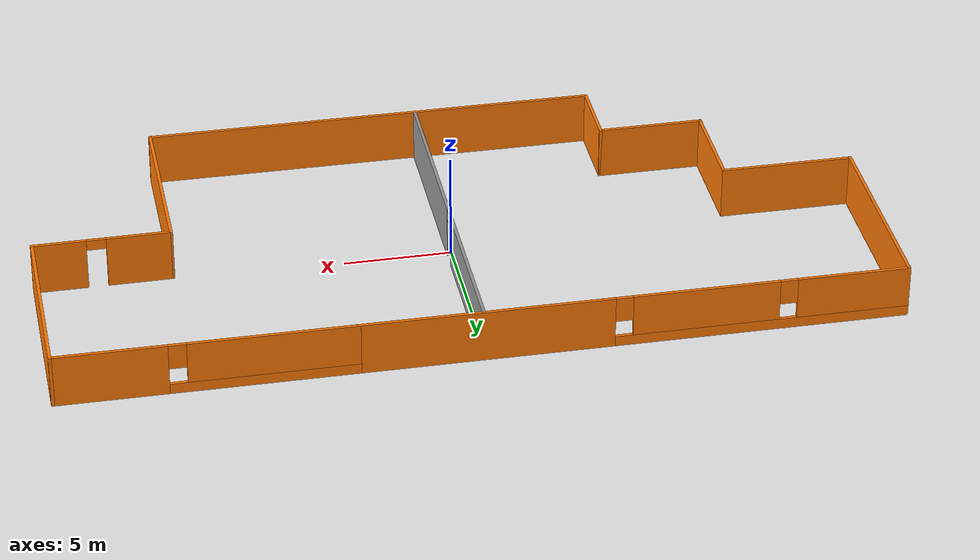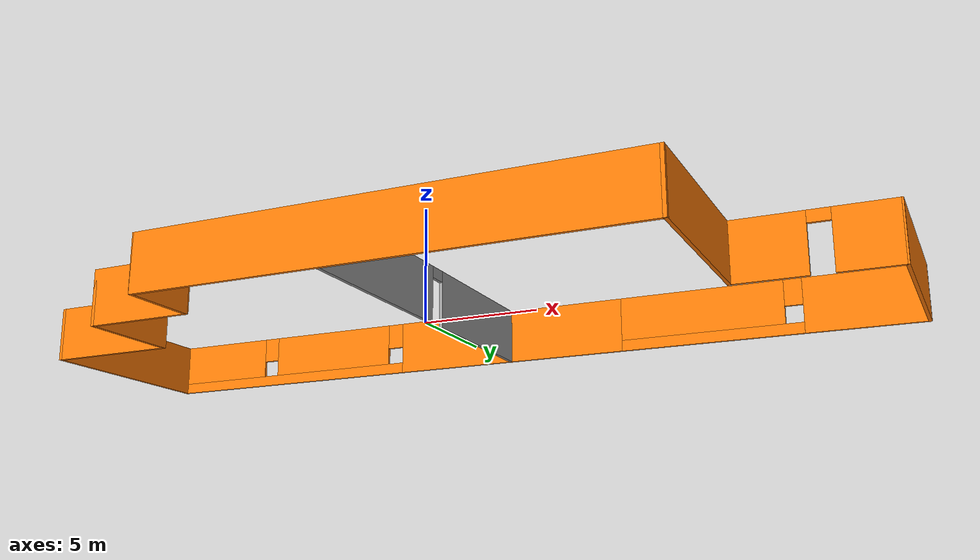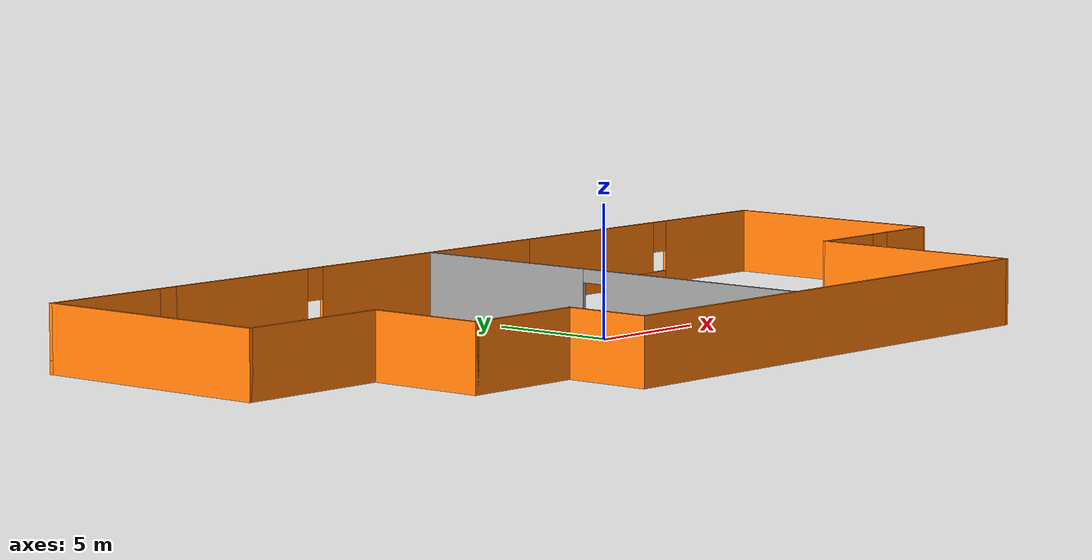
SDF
<?xml version='1.0'?>
<sdf version='1.6'>
  <model name='Building'>
    <link name='Wall_0'>
      <pose frame=''>-6.7329 8.76145 0 0 -0 3.14159</pose>
      <self_collide>0</self_collide>
      <kinematic>0</kinematic>
      <visual name='Wall_0_Visual_5'>
        <pose frame=''>6.91914 0 1.9 0 -0 0</pose>
        <geometry>
          <box>
            <size>0.8 0.15 1.2</size>
          </box>
        </geometry>
        <material>
          <script>
            <uri>file://media/materials/scripts/gazebo.material</uri>
            <name>Gazebo/Grey</name>
          </script>
          <ambient>0.996078 0.47451 0.0196078 1</ambient>
          <shader type='pixel'/>
          <diffuse>0.7 0.7 0.7 1</diffuse>
          <specular>0.01 0.01 0.01 1</specular>
          <emissive>0 0 0 1</emissive>
        </material>
        <meta>
          <layer>0</layer>
        </meta>
        <transparency>0</transparency>
        <cast_shadows>1</cast_shadows>
      </visual>
      <visual name='Wall_0_Visual_0'>
        <pose frame=''>-6.73561 0 1.25 0 -0 0</pose>
        <geometry>
          <box>
            <size>11.5288 0.15 2.5</size>
          </box>
        </geometry>
        <material>
          <script>
            <uri>file://media/materials/scripts/gazebo.material</uri>
            <name>Gazebo/Grey</name>
          </script>
          <ambient>0.996078 0.47451 0.0196078 1</ambient>
          <shader type='pixel'/>
          <diffuse>0.7 0.7 0.7 1</diffuse>
          <specular>0.01 0.01 0.01 1</specular>
          <emissive>0 0 0 1</emissive>
        </material>
        <meta>
          <layer>0</layer>
        </meta>
        <transparency>0</transparency>
        <cast_shadows>1</cast_shadows>
      </visual>
      <visual name='Wall_0_Visual_2'>
        <pose frame=''>3.17396 0 1.5 0 -0 0</pose>
        <geometry>
          <box>
            <size>6.69035 0.15 2</size>
          </box>
        </geometry>
        <material>
          <script>
            <uri>file://media/materials/scripts/gazebo.material</uri>
            <name>Gazebo/Grey</name>
          </script>
          <ambient>0.996078 0.47451 0.0196078 1</ambient>
          <shader type='pixel'/>
          <diffuse>0.7 0.7 0.7 1</diffuse>
          <specular>0.01 0.01 0.01 1</specular>
          <emissive>0 0 0 1</emissive>
        </material>
        <meta>
          <layer>0</layer>
        </meta>
        <transparency>0</transparency>
        <cast_shadows>1</cast_shadows>
      </visual>
      <visual name='Wall_0_Visual_1'>
        <pose frame=''>5.76439 0 0.25 0 -0 0</pose>
        <geometry>
          <box>
            <size>13.4712 0.15 0.5</size>
          </box>
        </geometry>
        <material>
          <script>
            <uri>file://media/materials/scripts/gazebo.material</uri>
            <name>Gazebo/Grey</name>
          </script>
          <ambient>0.996078 0.47451 0.0196078 1</ambient>
          <shader type='pixel'/>
          <diffuse>0.7 0.7 0.7 1</diffuse>
          <specular>0.01 0.01 0.01 1</specular>
          <emissive>0 0 0 1</emissive>
        </material>
        <meta>
          <layer>0</layer>
        </meta>
        <transparency>0</transparency>
        <cast_shadows>1</cast_shadows>
      </visual>
      <visual name='Wall_0_Visual_3'>
        <pose frame=''>9.90957 0 1.5 0 -0 0</pose>
        <geometry>
          <box>
            <size>5.18086 0.15 2</size>
          </box>
        </geometry>
        <material>
          <script>
            <uri>file://media/materials/scripts/gazebo.material</uri>
            <name>Gazebo/Grey</name>
          </script>
          <ambient>0.996078 0.47451 0.0196078 1</ambient>
          <shader type='pixel'/>
          <diffuse>0.7 0.7 0.7 1</diffuse>
          <specular>0.01 0.01 0.01 1</specular>
          <emissive>0 0 0 1</emissive>
        </material>
        <meta>
          <layer>0</layer>
        </meta>
        <transparency>0</transparency>
        <cast_shadows>1</cast_shadows>
      </visual>
      <visual name='Wall_0_Visual_4'>
        <pose frame=''>-0.571214 0 1.9 0 -0 0</pose>
        <geometry>
          <box>
            <size>0.8 0.15 1.2</size>
          </box>
        </geometry>
        <material>
          <script>
            <uri>file://media/materials/scripts/gazebo.material</uri>
            <name>Gazebo/Grey</name>
          </script>
          <ambient>0.996078 0.47451 0.0196078 1</ambient>
          <shader type='pixel'/>
          <diffuse>0.7 0.7 0.7 1</diffuse>
          <specular>0.01 0.01 0.01 1</specular>
          <emissive>0 0 0 1</emissive>
        </material>
        <meta>
          <layer>0</layer>
        </meta>
        <transparency>0</transparency>
        <cast_shadows>1</cast_shadows>
      </visual>
      <collision name='Wall_0_Collision_5'>
        <laser_retro>0</laser_retro>
        <max_contacts>10</max_contacts>
        <pose frame=''>6.91914 0 1.9 0 -0 0</pose>
        <geometry>
          <box>
            <size>0.8 0.15 1.2</size>
          </box>
        </geometry>
        <surface>
          <friction>
            <ode>
              <mu>1</mu>
              <mu2>1</mu2>
              <fdir1>0 0 0</fdir1>
              <slip1>0</slip1>
              <slip2>0</slip2>
            </ode>
            <torsional>
              <coefficient>1</coefficient>
              <patch_radius>0</patch_radius>
              <surface_radius>0</surface_radius>
              <use_patch_radius>1</use_patch_radius>
              <ode>
                <slip>0</slip>
              </ode>
            </torsional>
          </friction>
          <bounce>
            <restitution_coefficient>0</restitution_coefficient>
            <threshold>1e+06</threshold>
          </bounce>
          <contact>
            <collide_without_contact>0</collide_without_contact>
            <collide_without_contact_bitmask>1</collide_without_contact_bitmask>
            <collide_bitmask>1</collide_bitmask>
            <ode>
              <soft_cfm>0</soft_cfm>
              <soft_erp>0.2</soft_erp>
              <kp>1e+13</kp>
              <kd>1</kd>
              <max_vel>0.01</max_vel>
              <min_depth>0</min_depth>
            </ode>
            <bullet>
              <split_impulse>1</split_impulse>
              <split_impulse_penetration_threshold>-0.01</split_impulse_penetration_threshold>
              <soft_cfm>0</soft_cfm>
              <soft_erp>0.2</soft_erp>
              <kp>1e+13</kp>
              <kd>1</kd>
            </bullet>
          </contact>
        </surface>
      </collision>
      <collision name='Wall_0_Collision_3'>
        <laser_retro>0</laser_retro>
        <max_contacts>10</max_contacts>
        <pose frame=''>9.90957 0 1.5 0 -0 0</pose>
        <geometry>
          <box>
            <size>5.18086 0.15 2</size>
          </box>
        </geometry>
        <surface>
          <friction>
            <ode>
              <mu>1</mu>
              <mu2>1</mu2>
              <fdir1>0 0 0</fdir1>
              <slip1>0</slip1>
              <slip2>0</slip2>
            </ode>
            <torsional>
              <coefficient>1</coefficient>
              <patch_radius>0</patch_radius>
              <surface_radius>0</surface_radius>
              <use_patch_radius>1</use_patch_radius>
              <ode>
                <slip>0</slip>
              </ode>
            </torsional>
          </friction>
          <bounce>
            <restitution_coefficient>0</restitution_coefficient>
            <threshold>1e+06</threshold>
          </bounce>
          <contact>
            <collide_without_contact>0</collide_without_contact>
            <collide_without_contact_bitmask>1</collide_without_contact_bitmask>
            <collide_bitmask>1</collide_bitmask>
            <ode>
              <soft_cfm>0</soft_cfm>
              <soft_erp>0.2</soft_erp>
              <kp>1e+13</kp>
              <kd>1</kd>
              <max_vel>0.01</max_vel>
              <min_depth>0</min_depth>
            </ode>
            <bullet>
              <split_impulse>1</split_impulse>
              <split_impulse_penetration_threshold>-0.01</split_impulse_penetration_threshold>
              <soft_cfm>0</soft_cfm>
              <soft_erp>0.2</soft_erp>
              <kp>1e+13</kp>
              <kd>1</kd>
            </bullet>
          </contact>
        </surface>
      </collision>
      <collision name='Wall_0_Collision_2'>
        <laser_retro>0</laser_retro>
        <max_contacts>10</max_contacts>
        <pose frame=''>3.17396 0 1.5 0 -0 0</pose>
        <geometry>
          <box>
            <size>6.69035 0.15 2</size>
          </box>
        </geometry>
        <surface>
          <friction>
            <ode>
              <mu>1</mu>
              <mu2>1</mu2>
              <fdir1>0 0 0</fdir1>
              <slip1>0</slip1>
              <slip2>0</slip2>
            </ode>
            <torsional>
              <coefficient>1</coefficient>
              <patch_radius>0</patch_radius>
              <surface_radius>0</surface_radius>
              <use_patch_radius>1</use_patch_radius>
              <ode>
                <slip>0</slip>
              </ode>
            </torsional>
          </friction>
          <bounce>
            <restitution_coefficient>0</restitution_coefficient>
            <threshold>1e+06</threshold>
          </bounce>
          <contact>
            <collide_without_contact>0</collide_without_contact>
            <collide_without_contact_bitmask>1</collide_without_contact_bitmask>
            <collide_bitmask>1</collide_bitmask>
            <ode>
              <soft_cfm>0</soft_cfm>
              <soft_erp>0.2</soft_erp>
              <kp>1e+13</kp>
              <kd>1</kd>
              <max_vel>0.01</max_vel>
              <min_depth>0</min_depth>
            </ode>
            <bullet>
              <split_impulse>1</split_impulse>
              <split_impulse_penetration_threshold>-0.01</split_impulse_penetration_threshold>
              <soft_cfm>0</soft_cfm>
              <soft_erp>0.2</soft_erp>
              <kp>1e+13</kp>
              <kd>1</kd>
            </bullet>
          </contact>
        </surface>
      </collision>
      <collision name='Wall_0_Collision_4'>
        <laser_retro>0</laser_retro>
        <max_contacts>10</max_contacts>
        <pose frame=''>-0.571214 0 1.9 0 -0 0</pose>
        <geometry>
          <box>
            <size>0.8 0.15 1.2</size>
          </box>
        </geometry>
        <surface>
          <friction>
            <ode>
              <mu>1</mu>
              <mu2>1</mu2>
              <fdir1>0 0 0</fdir1>
              <slip1>0</slip1>
              <slip2>0</slip2>
            </ode>
            <torsional>
              <coefficient>1</coefficient>
              <patch_radius>0</patch_radius>
              <surface_radius>0</surface_radius>
              <use_patch_radius>1</use_patch_radius>
              <ode>
                <slip>0</slip>
              </ode>
            </torsional>
          </friction>
          <bounce>
            <restitution_coefficient>0</restitution_coefficient>
            <threshold>1e+06</threshold>
          </bounce>
          <contact>
            <collide_without_contact>0</collide_without_contact>
            <collide_without_contact_bitmask>1</collide_without_contact_bitmask>
            <collide_bitmask>1</collide_bitmask>
            <ode>
              <soft_cfm>0</soft_cfm>
              <soft_erp>0.2</soft_erp>
              <kp>1e+13</kp>
              <kd>1</kd>
              <max_vel>0.01</max_vel>
              <min_depth>0</min_depth>
            </ode>
            <bullet>
              <split_impulse>1</split_impulse>
              <split_impulse_penetration_threshold>-0.01</split_impulse_penetration_threshold>
              <soft_cfm>0</soft_cfm>
              <soft_erp>0.2</soft_erp>
              <kp>1e+13</kp>
              <kd>1</kd>
            </bullet>
          </contact>
        </surface>
      </collision>
      <collision name='Wall_0_Collision_0'>
        <laser_retro>0</laser_retro>
        <max_contacts>10</max_contacts>
        <pose frame=''>-6.73561 0 1.25 0 -0 0</pose>
        <geometry>
          <box>
            <size>11.5288 0.15 2.5</size>
          </box>
        </geometry>
        <surface>
          <friction>
            <ode>
              <mu>1</mu>
              <mu2>1</mu2>
              <fdir1>0 0 0</fdir1>
              <slip1>0</slip1>
              <slip2>0</slip2>
            </ode>
            <torsional>
              <coefficient>1</coefficient>
              <patch_radius>0</patch_radius>
              <surface_radius>0</surface_radius>
              <use_patch_radius>1</use_patch_radius>
              <ode>
                <slip>0</slip>
              </ode>
            </torsional>
          </friction>
          <bounce>
            <restitution_coefficient>0</restitution_coefficient>
            <threshold>1e+06</threshold>
          </bounce>
          <contact>
            <collide_without_contact>0</collide_without_contact>
            <collide_without_contact_bitmask>1</collide_without_contact_bitmask>
            <collide_bitmask>1</collide_bitmask>
            <ode>
              <soft_cfm>0</soft_cfm>
              <soft_erp>0.2</soft_erp>
              <kp>1e+13</kp>
              <kd>1</kd>
              <max_vel>0.01</max_vel>
              <min_depth>0</min_depth>
            </ode>
            <bullet>
              <split_impulse>1</split_impulse>
              <split_impulse_penetration_threshold>-0.01</split_impulse_penetration_threshold>
              <soft_cfm>0</soft_cfm>
              <soft_erp>0.2</soft_erp>
              <kp>1e+13</kp>
              <kd>1</kd>
            </bullet>
          </contact>
        </surface>
      </collision>
      <collision name='Wall_0_Collision_1'>
        <laser_retro>0</laser_retro>
        <max_contacts>10</max_contacts>
        <pose frame=''>5.76439 0 0.25 0 -0 0</pose>
        <geometry>
          <box>
            <size>13.4712 0.15 0.5</size>
          </box>
        </geometry>
        <surface>
          <friction>
            <ode>
              <mu>1</mu>
              <mu2>1</mu2>
              <fdir1>0 0 0</fdir1>
              <slip1>0</slip1>
              <slip2>0</slip2>
            </ode>
            <torsional>
              <coefficient>1</coefficient>
              <patch_radius>0</patch_radius>
              <surface_radius>0</surface_radius>
              <use_patch_radius>1</use_patch_radius>
              <ode>
                <slip>0</slip>
              </ode>
            </torsional>
          </friction>
          <bounce>
            <restitution_coefficient>0</restitution_coefficient>
            <threshold>1e+06</threshold>
          </bounce>
          <contact>
            <collide_without_contact>0</collide_without_contact>
            <collide_without_contact_bitmask>1</collide_without_contact_bitmask>
            <collide_bitmask>1</collide_bitmask>
            <ode>
              <soft_cfm>0</soft_cfm>
              <soft_erp>0.2</soft_erp>
              <kp>1e+13</kp>
              <kd>1</kd>
              <max_vel>0.01</max_vel>
              <min_depth>0</min_depth>
            </ode>
            <bullet>
              <split_impulse>1</split_impulse>
              <split_impulse_penetration_threshold>-0.01</split_impulse_penetration_threshold>
              <soft_cfm>0</soft_cfm>
              <soft_erp>0.2</soft_erp>
              <kp>1e+13</kp>
              <kd>1</kd>
            </bullet>
          </contact>
        </surface>
      </collision>
    </link>
    <link name='Wall_1'>
      <pose frame=''>-19.1579 3.96145 0 0 0 -1.5708</pose>
      <self_collide>0</self_collide>
      <kinematic>0</kinematic>
      <visual name='Wall_1_Visual'>
        <pose frame=''>0 0 1.25 0 -0 0</pose>
        <geometry>
          <box>
            <size>9.75 0.15 2.5</size>
          </box>
        </geometry>
        <material>
          <script>
            <uri>file://media/materials/scripts/gazebo.material</uri>
            <name>Gazebo/Grey</name>
          </script>
          <ambient>0.996078 0.47451 0.0196078 1</ambient>
          <shader type='pixel'/>
          <diffuse>0.7 0.7 0.7 1</diffuse>
          <specular>0.01 0.01 0.01 1</specular>
          <emissive>0 0 0 1</emissive>
        </material>
        <meta>
          <layer>0</layer>
        </meta>
        <transparency>0</transparency>
        <cast_shadows>1</cast_shadows>
      </visual>
      <collision name='Wall_1_Collision'>
        <laser_retro>0</laser_retro>
        <max_contacts>10</max_contacts>
        <pose frame=''>0 0 1.25 0 -0 0</pose>
        <geometry>
          <box>
            <size>9.75 0.15 2.5</size>
          </box>
        </geometry>
        <surface>
          <friction>
            <ode>
              <mu>1</mu>
              <mu2>1</mu2>
              <fdir1>0 0 0</fdir1>
              <slip1>0</slip1>
              <slip2>0</slip2>
            </ode>
            <torsional>
              <coefficient>1</coefficient>
              <patch_radius>0</patch_radius>
              <surface_radius>0</surface_radius>
              <use_patch_radius>1</use_patch_radius>
              <ode>
                <slip>0</slip>
              </ode>
            </torsional>
          </friction>
          <bounce>
            <restitution_coefficient>0</restitution_coefficient>
            <threshold>1e+06</threshold>
          </bounce>
          <contact>
            <collide_without_contact>0</collide_without_contact>
            <collide_without_contact_bitmask>1</collide_without_contact_bitmask>
            <collide_bitmask>1</collide_bitmask>
            <ode>
              <soft_cfm>0</soft_cfm>
              <soft_erp>0.2</soft_erp>
              <kp>1e+13</kp>
              <kd>1</kd>
              <max_vel>0.01</max_vel>
              <min_depth>0</min_depth>
            </ode>
            <bullet>
              <split_impulse>1</split_impulse>
              <split_impulse_penetration_threshold>-0.01</split_impulse_penetration_threshold>
              <soft_cfm>0</soft_cfm>
              <soft_erp>0.2</soft_erp>
              <kp>1e+13</kp>
              <kd>1</kd>
            </bullet>
          </contact>
        </surface>
      </collision>
    </link>
    <link name='Wall_10'>
      <pose frame=''>12.4248 8.76151 0 0 0 -3.14159</pose>
      <self_collide>0</self_collide>
      <kinematic>0</kinematic>
      <visual name='Wall_10_Visual_1'>
        <pose frame=''>2.58746 0 0.25 0 -0 0</pose>
        <geometry>
          <box>
            <size>8.4404 0.15 0.5</size>
          </box>
        </geometry>
        <material>
          <script>
            <uri>file://media/materials/scripts/gazebo.material</uri>
            <name>Gazebo/Grey</name>
          </script>
          <ambient>0.996078 0.47451 0.0196078 1</ambient>
          <shader type='pixel'/>
          <diffuse>0.7 0.7 0.7 1</diffuse>
          <specular>0.01 0.01 0.01 1</specular>
          <emissive>0 0 0 1</emissive>
        </material>
        <meta>
          <layer>0</layer>
        </meta>
        <transparency>0</transparency>
        <cast_shadows>1</cast_shadows>
      </visual>
      <visual name='Wall_10_Visual_2'>
        <pose frame=''>2.98746 0 1.5 0 -0 0</pose>
        <geometry>
          <box>
            <size>7.6404 0.15 2</size>
          </box>
        </geometry>
        <material>
          <script>
            <uri>file://media/materials/scripts/gazebo.material</uri>
            <name>Gazebo/Grey</name>
          </script>
          <ambient>0.996078 0.47451 0.0196078 1</ambient>
          <shader type='pixel'/>
          <diffuse>0.7 0.7 0.7 1</diffuse>
          <specular>0.01 0.01 0.01 1</specular>
          <emissive>0 0 0 1</emissive>
        </material>
        <meta>
          <layer>0</layer>
        </meta>
        <transparency>0</transparency>
        <cast_shadows>1</cast_shadows>
      </visual>
      <visual name='Wall_10_Visual_0'>
        <pose frame=''>-4.2202 0 1.25 0 -0 0</pose>
        <geometry>
          <box>
            <size>5.17492 0.15 2.5</size>
          </box>
        </geometry>
        <material>
          <script>
            <uri>file://media/materials/scripts/gazebo.material</uri>
            <name>Gazebo/Grey</name>
          </script>
          <ambient>0.996078 0.47451 0.0196078 1</ambient>
          <shader type='pixel'/>
          <diffuse>0.7 0.7 0.7 1</diffuse>
          <specular>0.01 0.01 0.01 1</specular>
          <emissive>0 0 0 1</emissive>
        </material>
        <meta>
          <layer>0</layer>
        </meta>
        <transparency>0</transparency>
        <cast_shadows>1</cast_shadows>
      </visual>
      <visual name='Wall_10_Visual_3'>
        <pose frame=''>-1.23274 0 1.9 0 -0 0</pose>
        <geometry>
          <box>
            <size>0.8 0.15 1.2</size>
          </box>
        </geometry>
        <material>
          <script>
            <uri>file://media/materials/scripts/gazebo.material</uri>
            <name>Gazebo/Grey</name>
          </script>
          <ambient>0.996078 0.47451 0.0196078 1</ambient>
          <shader type='pixel'/>
          <diffuse>0.7 0.7 0.7 1</diffuse>
          <specular>0.01 0.01 0.01 1</specular>
          <emissive>0 0 0 1</emissive>
        </material>
        <meta>
          <layer>0</layer>
        </meta>
        <transparency>0</transparency>
        <cast_shadows>1</cast_shadows>
      </visual>
      <collision name='Wall_10_Collision_3'>
        <laser_retro>0</laser_retro>
        <max_contacts>10</max_contacts>
        <pose frame=''>-1.23274 0 1.9 0 -0 0</pose>
        <geometry>
          <box>
            <size>0.8 0.15 1.2</size>
          </box>
        </geometry>
        <surface>
          <friction>
            <ode>
              <mu>1</mu>
              <mu2>1</mu2>
              <fdir1>0 0 0</fdir1>
              <slip1>0</slip1>
              <slip2>0</slip2>
            </ode>
            <torsional>
              <coefficient>1</coefficient>
              <patch_radius>0</patch_radius>
              <surface_radius>0</surface_radius>
              <use_patch_radius>1</use_patch_radius>
              <ode>
                <slip>0</slip>
              </ode>
            </torsional>
          </friction>
          <bounce>
            <restitution_coefficient>0</restitution_coefficient>
            <threshold>1e+06</threshold>
          </bounce>
          <contact>
            <collide_without_contact>0</collide_without_contact>
            <collide_without_contact_bitmask>1</collide_without_contact_bitmask>
            <collide_bitmask>1</collide_bitmask>
            <ode>
              <soft_cfm>0</soft_cfm>
              <soft_erp>0.2</soft_erp>
              <kp>1e+13</kp>
              <kd>1</kd>
              <max_vel>0.01</max_vel>
              <min_depth>0</min_depth>
            </ode>
            <bullet>
              <split_impulse>1</split_impulse>
              <split_impulse_penetration_threshold>-0.01</split_impulse_penetration_threshold>
              <soft_cfm>0</soft_cfm>
              <soft_erp>0.2</soft_erp>
              <kp>1e+13</kp>
              <kd>1</kd>
            </bullet>
          </contact>
        </surface>
      </collision>
      <collision name='Wall_10_Collision_1'>
        <laser_retro>0</laser_retro>
        <max_contacts>10</max_contacts>
        <pose frame=''>2.58746 0 0.25 0 -0 0</pose>
        <geometry>
          <box>
            <size>8.4404 0.15 0.5</size>
          </box>
        </geometry>
        <surface>
          <friction>
            <ode>
              <mu>1</mu>
              <mu2>1</mu2>
              <fdir1>0 0 0</fdir1>
              <slip1>0</slip1>
              <slip2>0</slip2>
            </ode>
            <torsional>
              <coefficient>1</coefficient>
              <patch_radius>0</patch_radius>
              <surface_radius>0</surface_radius>
              <use_patch_radius>1</use_patch_radius>
              <ode>
                <slip>0</slip>
              </ode>
            </torsional>
          </friction>
          <bounce>
            <restitution_coefficient>0</restitution_coefficient>
            <threshold>1e+06</threshold>
          </bounce>
          <contact>
            <collide_without_contact>0</collide_without_contact>
            <collide_without_contact_bitmask>1</collide_without_contact_bitmask>
            <collide_bitmask>1</collide_bitmask>
            <ode>
              <soft_cfm>0</soft_cfm>
              <soft_erp>0.2</soft_erp>
              <kp>1e+13</kp>
              <kd>1</kd>
              <max_vel>0.01</max_vel>
              <min_depth>0</min_depth>
            </ode>
            <bullet>
              <split_impulse>1</split_impulse>
              <split_impulse_penetration_threshold>-0.01</split_impulse_penetration_threshold>
              <soft_cfm>0</soft_cfm>
              <soft_erp>0.2</soft_erp>
              <kp>1e+13</kp>
              <kd>1</kd>
            </bullet>
          </contact>
        </surface>
      </collision>
      <collision name='Wall_10_Collision_2'>
        <laser_retro>0</laser_retro>
        <max_contacts>10</max_contacts>
        <pose frame=''>2.98746 0 1.5 0 -0 0</pose>
        <geometry>
          <box>
            <size>7.6404 0.15 2</size>
          </box>
        </geometry>
        <surface>
          <friction>
            <ode>
              <mu>1</mu>
              <mu2>1</mu2>
              <fdir1>0 0 0</fdir1>
              <slip1>0</slip1>
              <slip2>0</slip2>
            </ode>
            <torsional>
              <coefficient>1</coefficient>
              <patch_radius>0</patch_radius>
              <surface_radius>0</surface_radius>
              <use_patch_radius>1</use_patch_radius>
              <ode>
                <slip>0</slip>
              </ode>
            </torsional>
          </friction>
          <bounce>
            <restitution_coefficient>0</restitution_coefficient>
            <threshold>1e+06</threshold>
          </bounce>
          <contact>
            <collide_without_contact>0</collide_without_contact>
            <collide_without_contact_bitmask>1</collide_without_contact_bitmask>
            <collide_bitmask>1</collide_bitmask>
            <ode>
              <soft_cfm>0</soft_cfm>
              <soft_erp>0.2</soft_erp>
              <kp>1e+13</kp>
              <kd>1</kd>
              <max_vel>0.01</max_vel>
              <min_depth>0</min_depth>
            </ode>
            <bullet>
              <split_impulse>1</split_impulse>
              <split_impulse_penetration_threshold>-0.01</split_impulse_penetration_threshold>
              <soft_cfm>0</soft_cfm>
              <soft_erp>0.2</soft_erp>
              <kp>1e+13</kp>
              <kd>1</kd>
            </bullet>
          </contact>
        </surface>
      </collision>
      <collision name='Wall_10_Collision_0'>
        <laser_retro>0</laser_retro>
        <max_contacts>10</max_contacts>
        <pose frame=''>-4.2202 0 1.25 0 -0 0</pose>
        <geometry>
          <box>
            <size>5.17492 0.15 2.5</size>
          </box>
        </geometry>
        <surface>
          <friction>
            <ode>
              <mu>1</mu>
              <mu2>1</mu2>
              <fdir1>0 0 0</fdir1>
              <slip1>0</slip1>
              <slip2>0</slip2>
            </ode>
            <torsional>
              <coefficient>1</coefficient>
              <patch_radius>0</patch_radius>
              <surface_radius>0</surface_radius>
              <use_patch_radius>1</use_patch_radius>
              <ode>
                <slip>0</slip>
              </ode>
            </torsional>
          </friction>
          <bounce>
            <restitution_coefficient>0</restitution_coefficient>
            <threshold>1e+06</threshold>
          </bounce>
          <contact>
            <collide_without_contact>0</collide_without_contact>
            <collide_without_contact_bitmask>1</collide_without_contact_bitmask>
            <collide_bitmask>1</collide_bitmask>
            <ode>
              <soft_cfm>0</soft_cfm>
              <soft_erp>0.2</soft_erp>
              <kp>1e+13</kp>
              <kd>1</kd>
              <max_vel>0.01</max_vel>
              <min_depth>0</min_depth>
            </ode>
            <bullet>
              <split_impulse>1</split_impulse>
              <split_impulse_penetration_threshold>-0.01</split_impulse_penetration_threshold>
              <soft_cfm>0</soft_cfm>
              <soft_erp>0.2</soft_erp>
              <kp>1e+13</kp>
              <kd>1</kd>
            </bullet>
          </contact>
        </surface>
      </collision>
    </link>
    <link name='Wall_14'>
      <pose frame=''>0.157426 0.059562 0 0 0 -1.5708</pose>
      <self_collide>0</self_collide>
      <kinematic>0</kinematic>
      <visual name='Wall_14_Visual_2'>
        <pose frame=''>-0.57937 0 2.25 0 -0 0</pose>
        <geometry>
          <box>
            <size>0.9 0.15 0.5</size>
          </box>
        </geometry>
        <material>
          <script>
            <uri>file://media/materials/scripts/gazebo.material</uri>
            <name>Gazebo/Grey</name>
          </script>
          <ambient>1 1 1 1</ambient>
          <shader type='pixel'/>
          <diffuse>0.7 0.7 0.7 1</diffuse>
          <specular>0.01 0.01 0.01 1</specular>
          <emissive>0 0 0 1</emissive>
        </material>
        <meta>
          <layer>0</layer>
        </meta>
        <transparency>0</transparency>
        <cast_shadows>1</cast_shadows>
      </visual>
      <visual name='Wall_14_Visual_0'>
        <pose frame=''>-4.88969 0 1.25 0 -0 0</pose>
        <geometry>
          <box>
            <size>7.72063 0.15 2.5</size>
          </box>
        </geometry>
        <material>
          <script>
            <uri>file://media/materials/scripts/gazebo.material</uri>
            <name>Gazebo/Grey</name>
          </script>
          <ambient>1 1 1 1</ambient>
          <shader type='pixel'/>
          <diffuse>0.7 0.7 0.7 1</diffuse>
          <specular>0.01 0.01 0.01 1</specular>
          <emissive>0 0 0 1</emissive>
        </material>
        <meta>
          <layer>0</layer>
        </meta>
        <transparency>0</transparency>
        <cast_shadows>1</cast_shadows>
      </visual>
      <visual name='Wall_14_Visual_1'>
        <pose frame=''>4.31032 0 1.25 0 -0 0</pose>
        <geometry>
          <box>
            <size>8.87937 0.15 2.5</size>
          </box>
        </geometry>
        <material>
          <script>
            <uri>file://media/materials/scripts/gazebo.material</uri>
            <name>Gazebo/Grey</name>
          </script>
          <ambient>1 1 1 1</ambient>
          <shader type='pixel'/>
          <diffuse>0.7 0.7 0.7 1</diffuse>
          <specular>0.01 0.01 0.01 1</specular>
          <emissive>0 0 0 1</emissive>
        </material>
        <meta>
          <layer>0</layer>
        </meta>
        <transparency>0</transparency>
        <cast_shadows>1</cast_shadows>
      </visual>
      <collision name='Wall_14_Collision_2'>
        <laser_retro>0</laser_retro>
        <max_contacts>10</max_contacts>
        <pose frame=''>-0.57937 0 2.25 0 -0 0</pose>
        <geometry>
          <box>
            <size>0.9 0.15 0.5</size>
          </box>
        </geometry>
        <surface>
          <friction>
            <ode>
              <mu>1</mu>
              <mu2>1</mu2>
              <fdir1>0 0 0</fdir1>
              <slip1>0</slip1>
              <slip2>0</slip2>
            </ode>
            <torsional>
              <coefficient>1</coefficient>
              <patch_radius>0</patch_radius>
              <surface_radius>0</surface_radius>
              <use_patch_radius>1</use_patch_radius>
              <ode>
                <slip>0</slip>
              </ode>
            </torsional>
          </friction>
          <bounce>
            <restitution_coefficient>0</restitution_coefficient>
            <threshold>1e+06</threshold>
          </bounce>
          <contact>
            <collide_without_contact>0</collide_without_contact>
            <collide_without_contact_bitmask>1</collide_without_contact_bitmask>
            <collide_bitmask>1</collide_bitmask>
            <ode>
              <soft_cfm>0</soft_cfm>
              <soft_erp>0.2</soft_erp>
              <kp>1e+13</kp>
              <kd>1</kd>
              <max_vel>0.01</max_vel>
              <min_depth>0</min_depth>
            </ode>
            <bullet>
              <split_impulse>1</split_impulse>
              <split_impulse_penetration_threshold>-0.01</split_impulse_penetration_threshold>
              <soft_cfm>0</soft_cfm>
              <soft_erp>0.2</soft_erp>
              <kp>1e+13</kp>
              <kd>1</kd>
            </bullet>
          </contact>
        </surface>
      </collision>
      <collision name='Wall_14_Collision_0'>
        <laser_retro>0</laser_retro>
        <max_contacts>10</max_contacts>
        <pose frame=''>-4.88969 0 1.25 0 -0 0</pose>
        <geometry>
          <box>
            <size>7.72063 0.15 2.5</size>
          </box>
        </geometry>
        <surface>
          <friction>
            <ode>
              <mu>1</mu>
              <mu2>1</mu2>
              <fdir1>0 0 0</fdir1>
              <slip1>0</slip1>
              <slip2>0</slip2>
            </ode>
            <torsional>
              <coefficient>1</coefficient>
              <patch_radius>0</patch_radius>
              <surface_radius>0</surface_radius>
              <use_patch_radius>1</use_patch_radius>
              <ode>
                <slip>0</slip>
              </ode>
            </torsional>
          </friction>
          <bounce>
            <restitution_coefficient>0</restitution_coefficient>
            <threshold>1e+06</threshold>
          </bounce>
          <contact>
            <collide_without_contact>0</collide_without_contact>
            <collide_without_contact_bitmask>1</collide_without_contact_bitmask>
            <collide_bitmask>1</collide_bitmask>
            <ode>
              <soft_cfm>0</soft_cfm>
              <soft_erp>0.2</soft_erp>
              <kp>1e+13</kp>
              <kd>1</kd>
              <max_vel>0.01</max_vel>
              <min_depth>0</min_depth>
            </ode>
            <bullet>
              <split_impulse>1</split_impulse>
              <split_impulse_penetration_threshold>-0.01</split_impulse_penetration_threshold>
              <soft_cfm>0</soft_cfm>
              <soft_erp>0.2</soft_erp>
              <kp>1e+13</kp>
              <kd>1</kd>
            </bullet>
          </contact>
        </surface>
      </collision>
      <collision name='Wall_14_Collision_1'>
        <laser_retro>0</laser_retro>
        <max_contacts>10</max_contacts>
        <pose frame=''>4.31032 0 1.25 0 -0 0</pose>
        <geometry>
          <box>
            <size>8.87937 0.15 2.5</size>
          </box>
        </geometry>
        <surface>
          <friction>
            <ode>
              <mu>1</mu>
              <mu2>1</mu2>
              <fdir1>0 0 0</fdir1>
              <slip1>0</slip1>
              <slip2>0</slip2>
            </ode>
            <torsional>
              <coefficient>1</coefficient>
              <patch_radius>0</patch_radius>
              <surface_radius>0</surface_radius>
              <use_patch_radius>1</use_patch_radius>
              <ode>
                <slip>0</slip>
              </ode>
            </torsional>
          </friction>
          <bounce>
            <restitution_coefficient>0</restitution_coefficient>
            <threshold>1e+06</threshold>
          </bounce>
          <contact>
            <collide_without_contact>0</collide_without_contact>
            <collide_without_contact_bitmask>1</collide_without_contact_bitmask>
            <collide_bitmask>1</collide_bitmask>
            <ode>
              <soft_cfm>0</soft_cfm>
              <soft_erp>0.2</soft_erp>
              <kp>1e+13</kp>
              <kd>1</kd>
              <max_vel>0.01</max_vel>
              <min_depth>0</min_depth>
            </ode>
            <bullet>
              <split_impulse>1</split_impulse>
              <split_impulse_penetration_threshold>-0.01</split_impulse_penetration_threshold>
              <soft_cfm>0</soft_cfm>
              <soft_erp>0.2</soft_erp>
              <kp>1e+13</kp>
              <kd>1</kd>
            </bullet>
          </contact>
        </surface>
      </collision>
    </link>
    <link name='Wall_2'>
      <pose frame=''>-16.1079 -0.838546 0 0 -0 0</pose>
      <self_collide>0</self_collide>
      <kinematic>0</kinematic>
      <visual name='Wall_2_Visual'>
        <pose frame=''>0 0 1.25 0 -0 0</pose>
        <geometry>
          <box>
            <size>6.25 0.15 2.5</size>
          </box>
        </geometry>
        <material>
          <script>
            <uri>file://media/materials/scripts/gazebo.material</uri>
            <name>Gazebo/Grey</name>
          </script>
          <ambient>0.996078 0.47451 0.0196078 1</ambient>
          <shader type='pixel'/>
          <diffuse>0.7 0.7 0.7 1</diffuse>
          <specular>0.01 0.01 0.01 1</specular>
          <emissive>0 0 0 1</emissive>
        </material>
        <meta>
          <layer>0</layer>
        </meta>
        <transparency>0</transparency>
        <cast_shadows>1</cast_shadows>
      </visual>
      <collision name='Wall_2_Collision'>
        <laser_retro>0</laser_retro>
        <max_contacts>10</max_contacts>
        <pose frame=''>0 0 1.25 0 -0 0</pose>
        <geometry>
          <box>
            <size>6.25 0.15 2.5</size>
          </box>
        </geometry>
        <surface>
          <friction>
            <ode>
              <mu>1</mu>
              <mu2>1</mu2>
              <fdir1>0 0 0</fdir1>
              <slip1>0</slip1>
              <slip2>0</slip2>
            </ode>
            <torsional>
              <coefficient>1</coefficient>
              <patch_radius>0</patch_radius>
              <surface_radius>0</surface_radius>
              <use_patch_radius>1</use_patch_radius>
              <ode>
                <slip>0</slip>
              </ode>
            </torsional>
          </friction>
          <bounce>
            <restitution_coefficient>0</restitution_coefficient>
            <threshold>1e+06</threshold>
          </bounce>
          <contact>
            <collide_without_contact>0</collide_without_contact>
            <collide_without_contact_bitmask>1</collide_without_contact_bitmask>
            <collide_bitmask>1</collide_bitmask>
            <ode>
              <soft_cfm>0</soft_cfm>
              <soft_erp>0.2</soft_erp>
              <kp>1e+13</kp>
              <kd>1</kd>
              <max_vel>0.01</max_vel>
              <min_depth>0</min_depth>
            </ode>
            <bullet>
              <split_impulse>1</split_impulse>
              <split_impulse_penetration_threshold>-0.01</split_impulse_penetration_threshold>
              <soft_cfm>0</soft_cfm>
              <soft_erp>0.2</soft_erp>
              <kp>1e+13</kp>
              <kd>1</kd>
            </bullet>
          </contact>
        </surface>
      </collision>
    </link>
    <link name='Wall_3'>
      <pose frame=''>-13.0579 -3.13855 0 0 0 -1.5708</pose>
      <self_collide>0</self_collide>
      <kinematic>0</kinematic>
      <visual name='Wall_3_Visual'>
        <pose frame=''>0 0 1.25 0 -0 0</pose>
        <geometry>
          <box>
            <size>4.75 0.15 2.5</size>
          </box>
        </geometry>
        <material>
          <script>
            <uri>file://media/materials/scripts/gazebo.material</uri>
            <name>Gazebo/Grey</name>
          </script>
          <ambient>0.996078 0.47451 0.0196078 1</ambient>
          <shader type='pixel'/>
          <diffuse>0.7 0.7 0.7 1</diffuse>
          <specular>0.01 0.01 0.01 1</specular>
          <emissive>0 0 0 1</emissive>
        </material>
        <meta>
          <layer>0</layer>
        </meta>
        <transparency>0</transparency>
        <cast_shadows>1</cast_shadows>
      </visual>
      <collision name='Wall_3_Collision'>
        <laser_retro>0</laser_retro>
        <max_contacts>10</max_contacts>
        <pose frame=''>0 0 1.25 0 -0 0</pose>
        <geometry>
          <box>
            <size>4.75 0.15 2.5</size>
          </box>
        </geometry>
        <surface>
          <friction>
            <ode>
              <mu>1</mu>
              <mu2>1</mu2>
              <fdir1>0 0 0</fdir1>
              <slip1>0</slip1>
              <slip2>0</slip2>
            </ode>
            <torsional>
              <coefficient>1</coefficient>
              <patch_radius>0</patch_radius>
              <surface_radius>0</surface_radius>
              <use_patch_radius>1</use_patch_radius>
              <ode>
                <slip>0</slip>
              </ode>
            </torsional>
          </friction>
          <bounce>
            <restitution_coefficient>0</restitution_coefficient>
            <threshold>1e+06</threshold>
          </bounce>
          <contact>
            <collide_without_contact>0</collide_without_contact>
            <collide_without_contact_bitmask>1</collide_without_contact_bitmask>
            <collide_bitmask>1</collide_bitmask>
            <ode>
              <soft_cfm>0</soft_cfm>
              <soft_erp>0.2</soft_erp>
              <kp>1e+13</kp>
              <kd>1</kd>
              <max_vel>0.01</max_vel>
              <min_depth>0</min_depth>
            </ode>
            <bullet>
              <split_impulse>1</split_impulse>
              <split_impulse_penetration_threshold>-0.01</split_impulse_penetration_threshold>
              <soft_cfm>0</soft_cfm>
              <soft_erp>0.2</soft_erp>
              <kp>1e+13</kp>
              <kd>1</kd>
            </bullet>
          </contact>
        </surface>
      </collision>
    </link>
    <link name='Wall_4'>
      <pose frame=''>-10.6329 -5.43855 0 0 -0 0</pose>
      <self_collide>0</self_collide>
      <kinematic>0</kinematic>
      <visual name='Wall_4_Visual'>
        <pose frame=''>0 0 1.25 0 -0 0</pose>
        <geometry>
          <box>
            <size>5 0.15 2.5</size>
          </box>
        </geometry>
        <material>
          <script>
            <uri>file://media/materials/scripts/gazebo.material</uri>
            <name>Gazebo/Grey</name>
          </script>
          <ambient>0.996078 0.47451 0.0196078 1</ambient>
          <shader type='pixel'/>
          <diffuse>0.7 0.7 0.7 1</diffuse>
          <specular>0.01 0.01 0.01 1</specular>
          <emissive>0 0 0 1</emissive>
        </material>
        <meta>
          <layer>0</layer>
        </meta>
        <transparency>0</transparency>
        <cast_shadows>1</cast_shadows>
      </visual>
      <collision name='Wall_4_Collision'>
        <laser_retro>0</laser_retro>
        <max_contacts>10</max_contacts>
        <pose frame=''>0 0 1.25 0 -0 0</pose>
        <geometry>
          <box>
            <size>5 0.15 2.5</size>
          </box>
        </geometry>
        <surface>
          <friction>
            <ode>
              <mu>1</mu>
              <mu2>1</mu2>
              <fdir1>0 0 0</fdir1>
              <slip1>0</slip1>
              <slip2>0</slip2>
            </ode>
            <torsional>
              <coefficient>1</coefficient>
              <patch_radius>0</patch_radius>
              <surface_radius>0</surface_radius>
              <use_patch_radius>1</use_patch_radius>
              <ode>
                <slip>0</slip>
              </ode>
            </torsional>
          </friction>
          <bounce>
            <restitution_coefficient>0</restitution_coefficient>
            <threshold>1e+06</threshold>
          </bounce>
          <contact>
            <collide_without_contact>0</collide_without_contact>
            <collide_without_contact_bitmask>1</collide_without_contact_bitmask>
            <collide_bitmask>1</collide_bitmask>
            <ode>
              <soft_cfm>0</soft_cfm>
              <soft_erp>0.2</soft_erp>
              <kp>1e+13</kp>
              <kd>1</kd>
              <max_vel>0.01</max_vel>
              <min_depth>0</min_depth>
            </ode>
            <bullet>
              <split_impulse>1</split_impulse>
              <split_impulse_penetration_threshold>-0.01</split_impulse_penetration_threshold>
              <soft_cfm>0</soft_cfm>
              <soft_erp>0.2</soft_erp>
              <kp>1e+13</kp>
              <kd>1</kd>
            </bullet>
          </contact>
        </surface>
      </collision>
    </link>
    <link name='Wall_5'>
      <pose frame=''>-8.20774 -7.09999 0 0 0 -1.5707</pose>
      <self_collide>0</self_collide>
      <kinematic>0</kinematic>
      <visual name='Wall_5_Visual'>
        <pose frame=''>0 0 1.25 0 -0 0</pose>
        <geometry>
          <box>
            <size>3.47289 0.15 2.5</size>
          </box>
        </geometry>
        <material>
          <script>
            <uri>file://media/materials/scripts/gazebo.material</uri>
            <name>Gazebo/Grey</name>
          </script>
          <ambient>0.996078 0.47451 0.0196078 1</ambient>
          <shader type='pixel'/>
          <diffuse>0.7 0.7 0.7 1</diffuse>
          <specular>0.01 0.01 0.01 1</specular>
          <emissive>0 0 0 1</emissive>
        </material>
        <meta>
          <layer>0</layer>
        </meta>
        <transparency>0</transparency>
        <cast_shadows>1</cast_shadows>
      </visual>
      <collision name='Wall_5_Collision'>
        <laser_retro>0</laser_retro>
        <max_contacts>10</max_contacts>
        <pose frame=''>0 0 1.25 0 -0 0</pose>
        <geometry>
          <box>
            <size>3.47289 0.15 2.5</size>
          </box>
        </geometry>
        <surface>
          <friction>
            <ode>
              <mu>1</mu>
              <mu2>1</mu2>
              <fdir1>0 0 0</fdir1>
              <slip1>0</slip1>
              <slip2>0</slip2>
            </ode>
            <torsional>
              <coefficient>1</coefficient>
              <patch_radius>0</patch_radius>
              <surface_radius>0</surface_radius>
              <use_patch_radius>1</use_patch_radius>
              <ode>
                <slip>0</slip>
              </ode>
            </torsional>
          </friction>
          <bounce>
            <restitution_coefficient>0</restitution_coefficient>
            <threshold>1e+06</threshold>
          </bounce>
          <contact>
            <collide_without_contact>0</collide_without_contact>
            <collide_without_contact_bitmask>1</collide_without_contact_bitmask>
            <collide_bitmask>1</collide_bitmask>
            <ode>
              <soft_cfm>0</soft_cfm>
              <soft_erp>0.2</soft_erp>
              <kp>1e+13</kp>
              <kd>1</kd>
              <max_vel>0.01</max_vel>
              <min_depth>0</min_depth>
            </ode>
            <bullet>
              <split_impulse>1</split_impulse>
              <split_impulse_penetration_threshold>-0.01</split_impulse_penetration_threshold>
              <soft_cfm>0</soft_cfm>
              <soft_erp>0.2</soft_erp>
              <kp>1e+13</kp>
              <kd>1</kd>
            </bullet>
          </contact>
        </surface>
      </collision>
    </link>
    <link name='Wall_6'>
      <pose frame=''>2.32493 -8.76144 0 0 -0 0</pose>
      <self_collide>0</self_collide>
      <kinematic>0</kinematic>
      <visual name='Wall_6_Visual'>
        <pose frame=''>0 0 1.25 0 -0 0</pose>
        <geometry>
          <box>
            <size>21.215 0.15 2.5</size>
          </box>
        </geometry>
        <material>
          <script>
            <uri>file://media/materials/scripts/gazebo.material</uri>
            <name>Gazebo/Grey</name>
          </script>
          <ambient>0.996078 0.47451 0.0196078 1</ambient>
          <shader type='pixel'/>
          <diffuse>0.7 0.7 0.7 1</diffuse>
          <specular>0.01 0.01 0.01 1</specular>
          <emissive>0 0 0 1</emissive>
        </material>
        <meta>
          <layer>0</layer>
        </meta>
        <transparency>0</transparency>
        <cast_shadows>1</cast_shadows>
      </visual>
      <collision name='Wall_6_Collision'>
        <laser_retro>0</laser_retro>
        <max_contacts>10</max_contacts>
        <pose frame=''>0 0 1.25 0 -0 0</pose>
        <geometry>
          <box>
            <size>21.215 0.15 2.5</size>
          </box>
        </geometry>
        <surface>
          <friction>
            <ode>
              <mu>1</mu>
              <mu2>1</mu2>
              <fdir1>0 0 0</fdir1>
              <slip1>0</slip1>
              <slip2>0</slip2>
            </ode>
            <torsional>
              <coefficient>1</coefficient>
              <patch_radius>0</patch_radius>
              <surface_radius>0</surface_radius>
              <use_patch_radius>1</use_patch_radius>
              <ode>
                <slip>0</slip>
              </ode>
            </torsional>
          </friction>
          <bounce>
            <restitution_coefficient>0</restitution_coefficient>
            <threshold>1e+06</threshold>
          </bounce>
          <contact>
            <collide_without_contact>0</collide_without_contact>
            <collide_without_contact_bitmask>1</collide_without_contact_bitmask>
            <collide_bitmask>1</collide_bitmask>
            <ode>
              <soft_cfm>0</soft_cfm>
              <soft_erp>0.2</soft_erp>
              <kp>1e+13</kp>
              <kd>1</kd>
              <max_vel>0.01</max_vel>
              <min_depth>0</min_depth>
            </ode>
            <bullet>
              <split_impulse>1</split_impulse>
              <split_impulse_penetration_threshold>-0.01</split_impulse_penetration_threshold>
              <soft_cfm>0</soft_cfm>
              <soft_erp>0.2</soft_erp>
              <kp>1e+13</kp>
              <kd>1</kd>
            </bullet>
          </contact>
        </surface>
      </collision>
    </link>
    <link name='Wall_7'>
      <pose frame=''>12.8574 -4.53494 0 0 -0 1.5708</pose>
      <self_collide>0</self_collide>
      <kinematic>0</kinematic>
      <visual name='Wall_7_Visual'>
        <pose frame=''>0 0 1.25 0 -0 0</pose>
        <geometry>
          <box>
            <size>8.60325 0.15 2.5</size>
          </box>
        </geometry>
        <material>
          <script>
            <uri>file://media/materials/scripts/gazebo.material</uri>
            <name>Gazebo/Grey</name>
          </script>
          <ambient>0.996078 0.47451 0.0196078 1</ambient>
          <shader type='pixel'/>
          <diffuse>0.7 0.7 0.7 1</diffuse>
          <specular>0.01 0.01 0.01 1</specular>
          <emissive>0 0 0 1</emissive>
        </material>
        <meta>
          <layer>0</layer>
        </meta>
        <transparency>0</transparency>
        <cast_shadows>1</cast_shadows>
      </visual>
      <collision name='Wall_7_Collision'>
        <laser_retro>0</laser_retro>
        <max_contacts>10</max_contacts>
        <pose frame=''>0 0 1.25 0 -0 0</pose>
        <geometry>
          <box>
            <size>8.60325 0.15 2.5</size>
          </box>
        </geometry>
        <surface>
          <friction>
            <ode>
              <mu>1</mu>
              <mu2>1</mu2>
              <fdir1>0 0 0</fdir1>
              <slip1>0</slip1>
              <slip2>0</slip2>
            </ode>
            <torsional>
              <coefficient>1</coefficient>
              <patch_radius>0</patch_radius>
              <surface_radius>0</surface_radius>
              <use_patch_radius>1</use_patch_radius>
              <ode>
                <slip>0</slip>
              </ode>
            </torsional>
          </friction>
          <bounce>
            <restitution_coefficient>0</restitution_coefficient>
            <threshold>1e+06</threshold>
          </bounce>
          <contact>
            <collide_without_contact>0</collide_without_contact>
            <collide_without_contact_bitmask>1</collide_without_contact_bitmask>
            <collide_bitmask>1</collide_bitmask>
            <ode>
              <soft_cfm>0</soft_cfm>
              <soft_erp>0.2</soft_erp>
              <kp>1e+13</kp>
              <kd>1</kd>
              <max_vel>0.01</max_vel>
              <min_depth>0</min_depth>
            </ode>
            <bullet>
              <split_impulse>1</split_impulse>
              <split_impulse_penetration_threshold>-0.01</split_impulse_penetration_threshold>
              <soft_cfm>0</soft_cfm>
              <soft_erp>0.2</soft_erp>
              <kp>1e+13</kp>
              <kd>1</kd>
            </bullet>
          </contact>
        </surface>
      </collision>
    </link>
    <link name='Wall_8'>
      <pose frame=''>16.0074 -0.288438 0 0 -0 0.006349</pose>
      <self_collide>0</self_collide>
      <kinematic>0</kinematic>
      <visual name='Wall_8_Visual_0'>
        <pose frame=''>-1.70984 0 1.25 0 -0 0</pose>
        <geometry>
          <box>
            <size>3.03045 0.15 2.5</size>
          </box>
        </geometry>
        <material>
          <script>
            <uri>file://media/materials/scripts/gazebo.material</uri>
            <name>Gazebo/Grey</name>
          </script>
          <ambient>0.996078 0.47451 0.0196078 1</ambient>
          <shader type='pixel'/>
          <diffuse>0.7 0.7 0.7 1</diffuse>
          <specular>0.01 0.01 0.01 1</specular>
          <emissive>0 0 0 1</emissive>
        </material>
        <meta>
          <layer>0</layer>
        </meta>
        <transparency>0</transparency>
        <cast_shadows>1</cast_shadows>
      </visual>
      <visual name='Wall_8_Visual_1'>
        <pose frame=''>1.96523 0 1.25 0 -0 0</pose>
        <geometry>
          <box>
            <size>2.51967 0.15 2.5</size>
          </box>
        </geometry>
        <material>
          <script>
            <uri>file://media/materials/scripts/gazebo.material</uri>
            <name>Gazebo/Grey</name>
          </script>
          <ambient>0.996078 0.47451 0.0196078 1</ambient>
          <shader type='pixel'/>
          <diffuse>0.7 0.7 0.7 1</diffuse>
          <specular>0.01 0.01 0.01 1</specular>
          <emissive>0 0 0 1</emissive>
        </material>
        <meta>
          <layer>0</layer>
        </meta>
        <transparency>0</transparency>
        <cast_shadows>1</cast_shadows>
      </visual>
      <visual name='Wall_8_Visual_2'>
        <pose frame=''>0.255389 0 2.25 0 -0 0</pose>
        <geometry>
          <box>
            <size>0.9 0.15 0.5</size>
          </box>
        </geometry>
        <material>
          <script>
            <uri>file://media/materials/scripts/gazebo.material</uri>
            <name>Gazebo/Grey</name>
          </script>
          <ambient>0.996078 0.47451 0.0196078 1</ambient>
          <shader type='pixel'/>
          <diffuse>0.7 0.7 0.7 1</diffuse>
          <specular>0.01 0.01 0.01 1</specular>
          <emissive>0 0 0 1</emissive>
        </material>
        <meta>
          <layer>0</layer>
        </meta>
        <transparency>0</transparency>
        <cast_shadows>1</cast_shadows>
      </visual>
      <collision name='Wall_8_Collision_0'>
        <laser_retro>0</laser_retro>
        <max_contacts>10</max_contacts>
        <pose frame=''>-1.70984 0 1.25 0 -0 0</pose>
        <geometry>
          <box>
            <size>3.03045 0.15 2.5</size>
          </box>
        </geometry>
        <surface>
          <friction>
            <ode>
              <mu>1</mu>
              <mu2>1</mu2>
              <fdir1>0 0 0</fdir1>
              <slip1>0</slip1>
              <slip2>0</slip2>
            </ode>
            <torsional>
              <coefficient>1</coefficient>
              <patch_radius>0</patch_radius>
              <surface_radius>0</surface_radius>
              <use_patch_radius>1</use_patch_radius>
              <ode>
                <slip>0</slip>
              </ode>
            </torsional>
          </friction>
          <bounce>
            <restitution_coefficient>0</restitution_coefficient>
            <threshold>1e+06</threshold>
          </bounce>
          <contact>
            <collide_without_contact>0</collide_without_contact>
            <collide_without_contact_bitmask>1</collide_without_contact_bitmask>
            <collide_bitmask>1</collide_bitmask>
            <ode>
              <soft_cfm>0</soft_cfm>
              <soft_erp>0.2</soft_erp>
              <kp>1e+13</kp>
              <kd>1</kd>
              <max_vel>0.01</max_vel>
              <min_depth>0</min_depth>
            </ode>
            <bullet>
              <split_impulse>1</split_impulse>
              <split_impulse_penetration_threshold>-0.01</split_impulse_penetration_threshold>
              <soft_cfm>0</soft_cfm>
              <soft_erp>0.2</soft_erp>
              <kp>1e+13</kp>
              <kd>1</kd>
            </bullet>
          </contact>
        </surface>
      </collision>
      <collision name='Wall_8_Collision_1'>
        <laser_retro>0</laser_retro>
        <max_contacts>10</max_contacts>
        <pose frame=''>1.96523 0 1.25 0 -0 0</pose>
        <geometry>
          <box>
            <size>2.51967 0.15 2.5</size>
          </box>
        </geometry>
        <surface>
          <friction>
            <ode>
              <mu>1</mu>
              <mu2>1</mu2>
              <fdir1>0 0 0</fdir1>
              <slip1>0</slip1>
              <slip2>0</slip2>
            </ode>
            <torsional>
              <coefficient>1</coefficient>
              <patch_radius>0</patch_radius>
              <surface_radius>0</surface_radius>
              <use_patch_radius>1</use_patch_radius>
              <ode>
                <slip>0</slip>
              </ode>
            </torsional>
          </friction>
          <bounce>
            <restitution_coefficient>0</restitution_coefficient>
            <threshold>1e+06</threshold>
          </bounce>
          <contact>
            <collide_without_contact>0</collide_without_contact>
            <collide_without_contact_bitmask>1</collide_without_contact_bitmask>
            <collide_bitmask>1</collide_bitmask>
            <ode>
              <soft_cfm>0</soft_cfm>
              <soft_erp>0.2</soft_erp>
              <kp>1e+13</kp>
              <kd>1</kd>
              <max_vel>0.01</max_vel>
              <min_depth>0</min_depth>
            </ode>
            <bullet>
              <split_impulse>1</split_impulse>
              <split_impulse_penetration_threshold>-0.01</split_impulse_penetration_threshold>
              <soft_cfm>0</soft_cfm>
              <soft_erp>0.2</soft_erp>
              <kp>1e+13</kp>
              <kd>1</kd>
            </bullet>
          </contact>
        </surface>
      </collision>
      <collision name='Wall_8_Collision_2'>
        <laser_retro>0</laser_retro>
        <max_contacts>10</max_contacts>
        <pose frame=''>0.255389 0 2.25 0 -0 0</pose>
        <geometry>
          <box>
            <size>0.9 0.15 0.5</size>
          </box>
        </geometry>
        <surface>
          <friction>
            <ode>
              <mu>1</mu>
              <mu2>1</mu2>
              <fdir1>0 0 0</fdir1>
              <slip1>0</slip1>
              <slip2>0</slip2>
            </ode>
            <torsional>
              <coefficient>1</coefficient>
              <patch_radius>0</patch_radius>
              <surface_radius>0</surface_radius>
              <use_patch_radius>1</use_patch_radius>
              <ode>
                <slip>0</slip>
              </ode>
            </torsional>
          </friction>
          <bounce>
            <restitution_coefficient>0</restitution_coefficient>
            <threshold>1e+06</threshold>
          </bounce>
          <contact>
            <collide_without_contact>0</collide_without_contact>
            <collide_without_contact_bitmask>1</collide_without_contact_bitmask>
            <collide_bitmask>1</collide_bitmask>
            <ode>
              <soft_cfm>0</soft_cfm>
              <soft_erp>0.2</soft_erp>
              <kp>1e+13</kp>
              <kd>1</kd>
              <max_vel>0.01</max_vel>
              <min_depth>0</min_depth>
            </ode>
            <bullet>
              <split_impulse>1</split_impulse>
              <split_impulse_penetration_threshold>-0.01</split_impulse_penetration_threshold>
              <soft_cfm>0</soft_cfm>
              <soft_erp>0.2</soft_erp>
              <kp>1e+13</kp>
              <kd>1</kd>
            </bullet>
          </contact>
        </surface>
      </collision>
    </link>
    <link name='Wall_9'>
      <pose frame=''>19.1574 4.24656 0 0 -0 1.5708</pose>
      <self_collide>0</self_collide>
      <kinematic>0</kinematic>
      <visual name='Wall_9_Visual'>
        <pose frame=''>0 0 1.25 0 -0 0</pose>
        <geometry>
          <box>
            <size>9.18 0.15 2.5</size>
          </box>
        </geometry>
        <material>
          <script>
            <uri>file://media/materials/scripts/gazebo.material</uri>
            <name>Gazebo/Grey</name>
          </script>
          <ambient>0.996078 0.47451 0.0196078 1</ambient>
          <shader type='pixel'/>
          <diffuse>0.7 0.7 0.7 1</diffuse>
          <specular>0.01 0.01 0.01 1</specular>
          <emissive>0 0 0 1</emissive>
        </material>
        <meta>
          <layer>0</layer>
        </meta>
        <transparency>0</transparency>
        <cast_shadows>1</cast_shadows>
      </visual>
      <collision name='Wall_9_Collision'>
        <laser_retro>0</laser_retro>
        <max_contacts>10</max_contacts>
        <pose frame=''>0 0 1.25 0 -0 0</pose>
        <geometry>
          <box>
            <size>9.18 0.15 2.5</size>
          </box>
        </geometry>
        <surface>
          <friction>
            <ode>
              <mu>1</mu>
              <mu2>1</mu2>
              <fdir1>0 0 0</fdir1>
              <slip1>0</slip1>
              <slip2>0</slip2>
            </ode>
            <torsional>
              <coefficient>1</coefficient>
              <patch_radius>0</patch_radius>
              <surface_radius>0</surface_radius>
              <use_patch_radius>1</use_patch_radius>
              <ode>
                <slip>0</slip>
              </ode>
            </torsional>
          </friction>
          <bounce>
            <restitution_coefficient>0</restitution_coefficient>
            <threshold>1e+06</threshold>
          </bounce>
          <contact>
            <collide_without_contact>0</collide_without_contact>
            <collide_without_contact_bitmask>1</collide_without_contact_bitmask>
            <collide_bitmask>1</collide_bitmask>
            <ode>
              <soft_cfm>0</soft_cfm>
              <soft_erp>0.2</soft_erp>
              <kp>1e+13</kp>
              <kd>1</kd>
              <max_vel>0.01</max_vel>
              <min_depth>0</min_depth>
            </ode>
            <bullet>
              <split_impulse>1</split_impulse>
              <split_impulse_penetration_threshold>-0.01</split_impulse_penetration_threshold>
              <soft_cfm>0</soft_cfm>
              <soft_erp>0.2</soft_erp>
              <kp>1e+13</kp>
              <kd>1</kd>
            </bullet>
          </contact>
        </surface>
      </collision>
    </link>
    <static>1</static>
    <allow_auto_disable>1</allow_auto_disable>
  </model>
</sdf>
